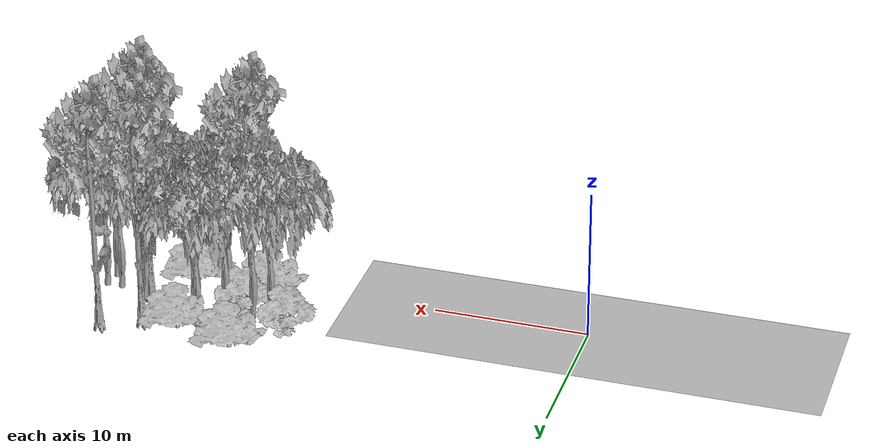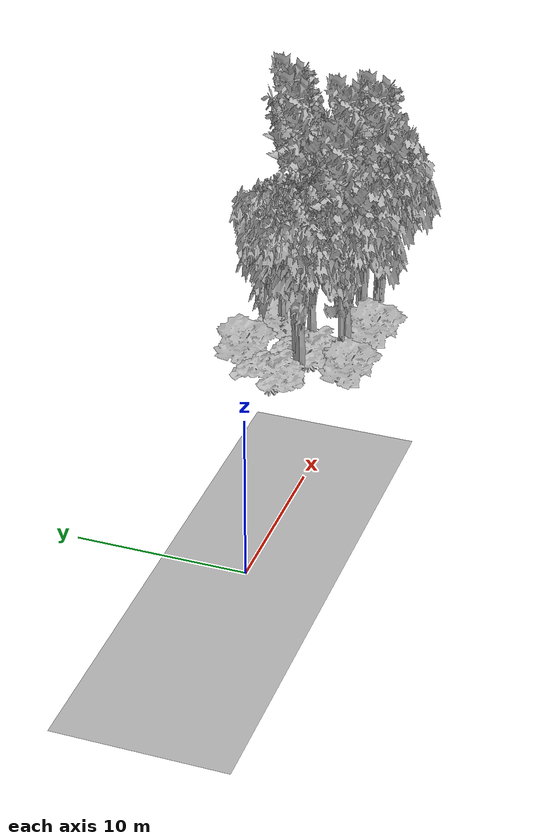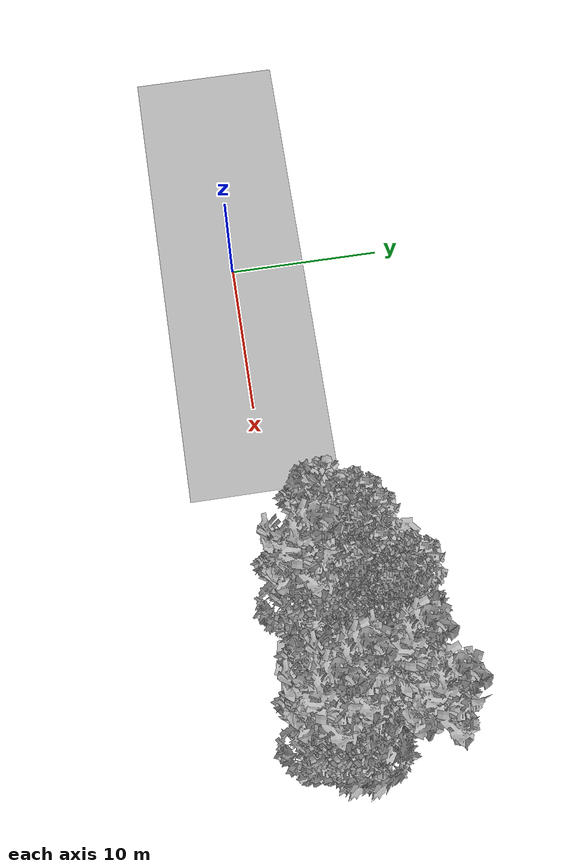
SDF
<sdf version="1.7">
 <world name="default">
  <model name="ground_plane">
   <static>1</static>
   <link name="link">
    <collision name="collision">
     <pose>-50 0 0 0 -0 0</pose>
     <geometry><plane><normal>0 0 1</normal><size>100 100</size></plane></geometry>
     <surface><contact><ode><min_depth>0.01</min_depth><max_vel>0</max_vel></ode></contact></surface>
    </collision>
    <visual name="grass">
     <cast_shadows>0</cast_shadows>
     <geometry>
      <mesh>
       <scale>0.5814285714285714 0.18142857142857144 0.1</scale>
       <uri>file://grass_plane/meshes/grass_plane.dae</uri>
      </mesh>
     </geometry>
    </visual>
   </link>
  </model>
  <model name="Tree 6">
   <static>1</static>
   <pose>28.48274567532701 2.295979283848528 0 1.57079 -0 0</pose>
   <link name="link">
    <collision name="collision">
     <geometry><mesh><scale>3.5 5 3.5</scale><uri>model://tree_2/meshes/tree_2.obj</uri></mesh></geometry>
    </collision>
    <visual name="visual">
     <geometry><mesh><scale>3.5 5 3.5</scale><uri>model://tree_2/meshes/tree_2.obj</uri></mesh></geometry>
    </visual>
   </link>
  </model>
  <model name="Tree 21">
   <static>1</static>
   <pose>28.092453200630075 3.1566407805987637 0 1.57079 -0 0</pose>
   <link name="link">
    <collision name="collision">
     <geometry><mesh><scale>3.5 5 3.5</scale><uri>model://tree_9/meshes/tree_9.obj</uri></mesh></geometry>
    </collision>
    <visual name="visual">
     <geometry><mesh><scale>3.5 5 3.5</scale><uri>model://tree_9/meshes/tree_9.obj</uri></mesh></geometry>
    </visual>
   </link>
  </model>
  <model name="Tree 38">
   <static>1</static>
   <pose>24.11191008798484 5.428902553024258 0 1.57079 -0 0</pose>
   <link name="link">
    <collision name="collision">
     <geometry><mesh><scale>3.5 5 3.5</scale><uri>model://tree_2/meshes/tree_2.obj</uri></mesh></geometry>
    </collision>
    <visual name="visual">
     <geometry><mesh><scale>3.5 5 3.5</scale><uri>model://tree_2/meshes/tree_2.obj</uri></mesh></geometry>
    </visual>
   </link>
  </model>
  <model name="Tree 50">
   <static>1</static>
   <pose>20.67462964960626 4.144867983447487 0 1.57079 -0 0</pose>
   <link name="link">
    <collision name="collision">
     <geometry><mesh><scale>3.5 5 3.5</scale><uri>model://tree_2/meshes/tree_2.obj</uri></mesh></geometry>
    </collision>
    <visual name="visual">
     <geometry><mesh><scale>3.5 5 3.5</scale><uri>model://tree_2/meshes/tree_2.obj</uri></mesh></geometry>
    </visual>
   </link>
  </model>
  <model name="Tree 131">
   <static>1</static>
   <pose>23.702009784788288 6.089957472381105 0 1.57079 -0 0</pose>
   <link name="link">
    <collision name="collision">
     <geometry><mesh><scale>3.5 5 3.5</scale><uri>model://tree_2/meshes/tree_2.obj</uri></mesh></geometry>
    </collision>
    <visual name="visual">
     <geometry><mesh><scale>3.5 5 3.5</scale><uri>model://tree_2/meshes/tree_2.obj</uri></mesh></geometry>
    </visual>
   </link>
  </model>
  <model name="Tree 141">
   <static>1</static>
   <pose>21.80160301415438 1.6021849397822727 0 1.57079 -0 0</pose>
   <link name="link">
    <collision name="collision">
     <geometry><mesh><scale>3.5 5 3.5</scale><uri>model://tree_9/meshes/tree_9.obj</uri></mesh></geometry>
    </collision>
    <visual name="visual">
     <geometry><mesh><scale>3.5 5 3.5</scale><uri>model://tree_9/meshes/tree_9.obj</uri></mesh></geometry>
    </visual>
   </link>
  </model>
  <model name="Tree 174">
   <static>1</static>
   <pose>22.669147447450825 3.8068368536313493 0 1.57079 -0 0</pose>
   <link name="link">
    <collision name="collision">
     <geometry><mesh><scale>3.5 5 3.5</scale><uri>model://tree_2/meshes/tree_2.obj</uri></mesh></geometry>
    </collision>
    <visual name="visual">
     <geometry><mesh><scale>3.5 5 3.5</scale><uri>model://tree_2/meshes/tree_2.obj</uri></mesh></geometry>
    </visual>
   </link>
  </model>
  <model name="Tree 183">
   <static>1</static>
   <pose>21.13590146906381 7.658544999335394 0 1.57079 -0 0</pose>
   <link name="link">
    <collision name="collision">
     <geometry><mesh><scale>3 2 3</scale><uri>model://tree_3/meshes/tree_3.obj</uri></mesh></geometry>
    </collision>
    <visual name="visual">
     <geometry><mesh><scale>3 2 3</scale><uri>model://tree_3/meshes/tree_3.obj</uri></mesh></geometry>
    </visual>
   </link>
  </model>
  <model name="Tree 187">
   <static>1</static>
   <pose>31.047235460277875 2.96643009787093 0 1.57079 -0 0</pose>
   <link name="link">
    <collision name="collision">
     <geometry><mesh><scale>3.5 5 3.5</scale><uri>model://tree_2/meshes/tree_2.obj</uri></mesh></geometry>
    </collision>
    <visual name="visual">
     <geometry><mesh><scale>3.5 5 3.5</scale><uri>model://tree_2/meshes/tree_2.obj</uri></mesh></geometry>
    </visual>
   </link>
  </model>
  <model name="Tree 218">
   <static>1</static>
   <pose>25.03234457940043 6.44110590058683 0 1.57079 -0 0</pose>
   <link name="link">
    <collision name="collision">
     <geometry><mesh><scale>3 2 3</scale><uri>model://tree_3/meshes/tree_3.obj</uri></mesh></geometry>
    </collision>
    <visual name="visual">
     <geometry><mesh><scale>3 2 3</scale><uri>model://tree_3/meshes/tree_3.obj</uri></mesh></geometry>
    </visual>
   </link>
  </model>
  <model name="Tree 220">
   <static>1</static>
   <pose>29.26578969933989 1.5831518222079808 0 1.57079 -0 0</pose>
   <link name="link">
    <collision name="collision">
     <geometry><mesh><scale>3.5 5 3.5</scale><uri>model://tree_9/meshes/tree_9.obj</uri></mesh></geometry>
    </collision>
    <visual name="visual">
     <geometry><mesh><scale>3.5 5 3.5</scale><uri>model://tree_9/meshes/tree_9.obj</uri></mesh></geometry>
    </visual>
   </link>
  </model>
  <model name="Tree 222">
   <static>1</static>
   <pose>25.816841771637485 0.5429507345774347 0 1.57079 -0 0</pose>
   <link name="link">
    <collision name="collision">
     <geometry><mesh><scale>3 2 3</scale><uri>model://tree_3/meshes/tree_3.obj</uri></mesh></geometry>
    </collision>
    <visual name="visual">
     <geometry><mesh><scale>3 2 3</scale><uri>model://tree_3/meshes/tree_3.obj</uri></mesh></geometry>
    </visual>
   </link>
  </model>
  <model name="Tree 237">
   <static>1</static>
   <pose>29.935964256611214 7.38731550845641 0 1.57079 -0 0</pose>
   <link name="link">
    <collision name="collision">
     <geometry><mesh><scale>3.5 5 3.5</scale><uri>model://tree_9/meshes/tree_9.obj</uri></mesh></geometry>
    </collision>
    <visual name="visual">
     <geometry><mesh><scale>3.5 5 3.5</scale><uri>model://tree_9/meshes/tree_9.obj</uri></mesh></geometry>
    </visual>
   </link>
  </model>
  <model name="Tree 242">
   <static>1</static>
   <pose>28.09115395779058 3.870285319975114 0 1.57079 -0 0</pose>
   <link name="link">
    <collision name="collision">
     <geometry><mesh><scale>3.5 5 3.5</scale><uri>model://tree_2/meshes/tree_2.obj</uri></mesh></geometry>
    </collision>
    <visual name="visual">
     <geometry><mesh><scale>3.5 5 3.5</scale><uri>model://tree_2/meshes/tree_2.obj</uri></mesh></geometry>
    </visual>
   </link>
  </model>
  <model name="Tree 245">
   <static>1</static>
   <pose>27.48300787091776 6.266500627043666 0 1.57079 -0 0</pose>
   <link name="link">
    <collision name="collision">
     <geometry><mesh><scale>3.5 5 3.5</scale><uri>model://tree_9/meshes/tree_9.obj</uri></mesh></geometry>
    </collision>
    <visual name="visual">
     <geometry><mesh><scale>3.5 5 3.5</scale><uri>model://tree_9/meshes/tree_9.obj</uri></mesh></geometry>
    </visual>
   </link>
  </model>
  <model name="Tree 258">
   <static>1</static>
   <pose>30.871090584043927 1.7673552893311175 0 1.57079 -0 0</pose>
   <link name="link">
    <collision name="collision">
     <geometry><mesh><scale>3.5 5 3.5</scale><uri>model://tree_2/meshes/tree_2.obj</uri></mesh></geometry>
    </collision>
    <visual name="visual">
     <geometry><mesh><scale>3.5 5 3.5</scale><uri>model://tree_2/meshes/tree_2.obj</uri></mesh></geometry>
    </visual>
   </link>
  </model>
  <model name="Tree 315">
   <static>1</static>
   <pose>23.257481873756547 1.7165981409370197 0 1.57079 -0 0</pose>
   <link name="link">
    <collision name="collision">
     <geometry><mesh><scale>3.5 5 3.5</scale><uri>model://tree_2/meshes/tree_2.obj</uri></mesh></geometry>
    </collision>
    <visual name="visual">
     <geometry><mesh><scale>3.5 5 3.5</scale><uri>model://tree_2/meshes/tree_2.obj</uri></mesh></geometry>
    </visual>
   </link>
  </model>
  <model name="Tree 356">
   <static>1</static>
   <pose>30.049404568904407 2.9882859188010933 0 1.57079 -0 0</pose>
   <link name="link">
    <collision name="collision">
     <geometry><mesh><scale>3.5 5 3.5</scale><uri>model://tree_2/meshes/tree_2.obj</uri></mesh></geometry>
    </collision>
    <visual name="visual">
     <geometry><mesh><scale>3.5 5 3.5</scale><uri>model://tree_2/meshes/tree_2.obj</uri></mesh></geometry>
    </visual>
   </link>
  </model>
  <model name="Tree 368">
   <static>1</static>
   <pose>21.580723479492747 3.523746363657086 0 1.57079 -0 0</pose>
   <link name="link">
    <collision name="collision">
     <geometry><mesh><scale>4 2.5 4</scale><uri>model://tree_1/meshes/tree_1.obj</uri></mesh></geometry>
    </collision>
    <visual name="visual">
     <geometry><mesh><scale>4 2.5 4</scale><uri>model://tree_1/meshes/tree_1.obj</uri></mesh></geometry>
    </visual>
   </link>
  </model>
  <model name="Tree 398">
   <static>1</static>
   <pose>24.08236725004039 5.134883007859926 0 1.57079 -0 0</pose>
   <link name="link">
    <collision name="collision">
     <geometry><mesh><scale>3.5 5 3.5</scale><uri>model://tree_2/meshes/tree_2.obj</uri></mesh></geometry>
    </collision>
    <visual name="visual">
     <geometry><mesh><scale>3.5 5 3.5</scale><uri>model://tree_2/meshes/tree_2.obj</uri></mesh></geometry>
    </visual>
   </link>
  </model>
  <model name="Tree 413">
   <static>1</static>
   <pose>19.700740532857466 3.540428169363704 0 1.57079 -0 0</pose>
   <link name="link">
    <collision name="collision">
     <geometry><mesh><scale>3.5 5 3.5</scale><uri>model://tree_2/meshes/tree_2.obj</uri></mesh></geometry>
    </collision>
    <visual name="visual">
     <geometry><mesh><scale>3.5 5 3.5</scale><uri>model://tree_2/meshes/tree_2.obj</uri></mesh></geometry>
    </visual>
   </link>
  </model>
  <model name="Tree 414">
   <static>1</static>
   <pose>18.180614176774128 4.926582836681121 0 1.57079 -0 0</pose>
   <link name="link">
    <collision name="collision">
     <geometry><mesh><scale>4 2.5 4</scale><uri>model://tree_1/meshes/tree_1.obj</uri></mesh></geometry>
    </collision>
    <visual name="visual">
     <geometry><mesh><scale>4 2.5 4</scale><uri>model://tree_1/meshes/tree_1.obj</uri></mesh></geometry>
    </visual>
   </link>
  </model>
  <model name="Tree 420">
   <static>1</static>
   <pose>20.812364767752314 0.6648112884686892 0 1.57079 -0 0</pose>
   <link name="link">
    <collision name="collision">
     <geometry><mesh><scale>3 2 3</scale><uri>model://tree_3/meshes/tree_3.obj</uri></mesh></geometry>
    </collision>
    <visual name="visual">
     <geometry><mesh><scale>3 2 3</scale><uri>model://tree_3/meshes/tree_3.obj</uri></mesh></geometry>
    </visual>
   </link>
  </model>
 </world>
</sdf>
